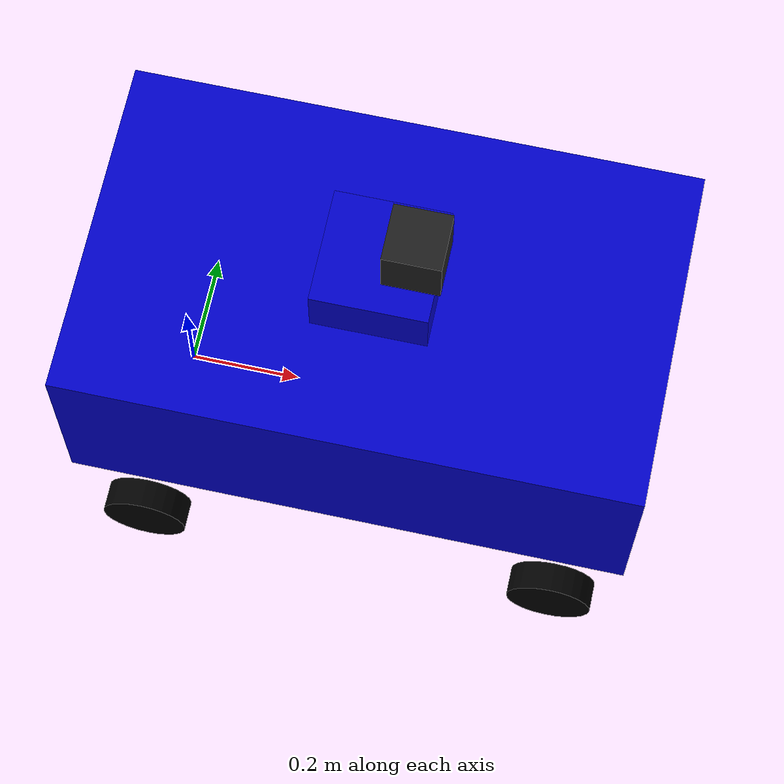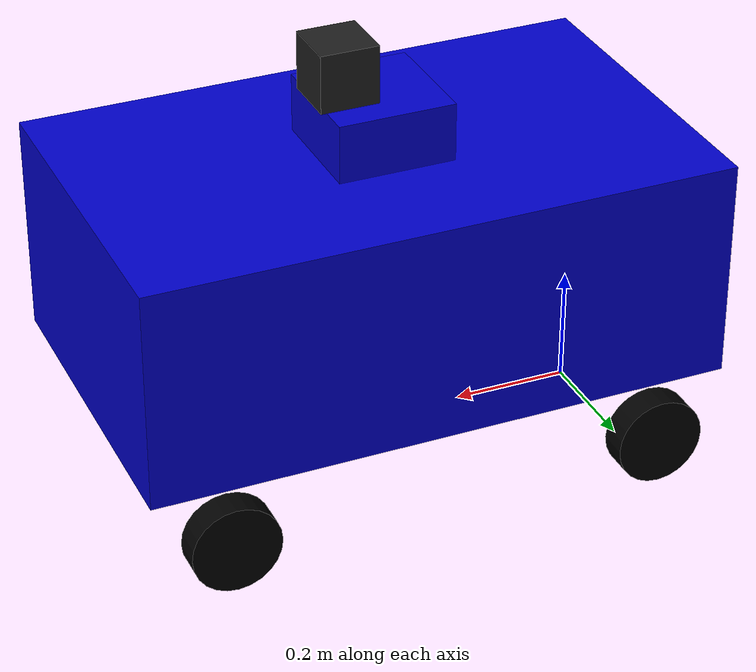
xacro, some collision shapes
<?xml version="1.0"?>
<robot name="R2D2_base" xmlns:xacro="http://ros.org/wiki/xacro">
<material name="blue">
  <color rgba="0 0 0.8 1"/>
</material>

<material name="black">
  <color rgba="0 0 0 1"/>
</material>

<material name="white">
  <color rgba="1 1 1 1"/>
</material>

<xacro:property name="wheel_cylinder_length" value="0.05" />
<xacro:property name="wheel_separation" value="0.658" />
<xacro:property name="wheel_radius" value="0.075" />

<xacro:property name="car_body_length" value="1" />
<xacro:property name="car_body_width" value="0.6" />
<xacro:property name="car_body_height" value="0.38" />

<xacro:property name="load_length" value="0.2" />
<xacro:property name="load_width" value="0.2" />
<xacro:property name="load_height" value="0.2" />

<!-- the z dist from baselink to  basefoot in Z axis-->
<xacro:property name="base_link_to_basefootprint_z" value="${wheel_radius}" />

<!-- the dist from body center to base_link in x dir -->
<xacro:property name="bodycenter_to_base_link_x" value="0.36" />
<!-- the dist from body center to base_link in y dir -->
<xacro:property name="bodycenter_to_base_link_y" value="0" />
<!-- the dist from body center to base_link in z dir -->
<xacro:property name="bodycenter_to_base_link_z" value="${wheel_radius+car_body_height/2}" />

<!-- the dist from load center to base_link in x dir -->
<xacro:property name="load_to_base_link_x" value="0.36" />
<!-- the dist from load center to base_link in y dir -->
<xacro:property name="load_to_base_link_y" value="0" />
<!-- the dist from load center to base_link in z dir -->
<xacro:property name="load_to_base_link_z" value="${bodycenter_to_base_link_z+car_body_height/2}" />

<!-- the dist from drivingwheel center to base_link in x dir -->
<xacro:property name="rearwheelcenter_to_baselink_x" value="0" />
<!-- the dist from drivingwheel center to base_link in y dir -->
<xacro:property name="rearwheelcenter_to_baselink_y" value="${wheel_separation/2.0}" />
<!-- the dist from drivingwheel center to base_link in z dir -->
<xacro:property name="rearwheelcenter_to_baselink_z" value="0" />

<!-- the dist from driven wheel center to base_link in x dir -->
<xacro:property name="frontwheelcenter_to_baselink_x" value="0.74" />
<!-- the dist from driven wheel center to base_link in y dir -->
<xacro:property name="frontwheelcenter_to_baselink_y" value="${wheel_separation/2.0}" />
<!-- the dist from driven wheel center to base_link in z dir -->
<xacro:property name="frontwheelcenter_to_baselink_z" value="0" />

<!-- the dist from laser center to base_link in x dir -->
<xacro:property name="lasercenter_to_baselink_x" value="0.42" />
<!-- the dist from laser center to base_link in y dir -->
<xacro:property name="lasercenter_to_baselink_y" value="0" />
<!-- the dist from laser center to base_link in z dir -->
<xacro:property name="lasercenter_to_baselink_z" value="${load_to_base_link_z+load_height/2+0.05}" />

  <xacro:macro name="default_inertial" params="mass">
    <inertial>
      <mass value="${mass}" />
      <inertia ixx="1.0" ixy="0.0" ixz="0.0" iyy="1.0" iyz="0.0" izz="1.0" />
    </inertial>
  </xacro:macro>

<link name="base_footprint">
</link>

<link name="base_link">
    <visual>
      <geometry>
         <box size="${car_body_length} ${car_body_width} ${car_body_height}"/>
      </geometry>
     <origin xyz="${bodycenter_to_base_link_x} ${bodycenter_to_base_link_y} ${bodycenter_to_base_link_z}" rpy="0 0 0"/>
     <material name="blue"/>
    </visual>
    <collision>
      <geometry>
        <box size="${car_body_length} ${car_body_width} ${car_body_height}"/>
      </geometry>
     <origin xyz="${bodycenter_to_base_link_x} ${bodycenter_to_base_link_y} ${bodycenter_to_base_link_z}" rpy="0 0 0"/>
    </collision>
    <xacro:default_inertial mass="100"/>
  </link>

<link name="load">
    <visual>
      <geometry>
         <box size="${load_length} ${load_width} ${load_height}"/>
      </geometry>
     <origin xyz="0 0 0" rpy="0 0 0"/>
     <material name="blue"/>
    </visual>
    <collision>
      <geometry>
        <box size="${load_length} ${load_width} ${load_height}"/>
      </geometry>
     <origin xyz="0 0 0" rpy="0 0 0"/>
    </collision>
    <xacro:default_inertial mass="50"/>
  </link>

  <link name="left_front_wheel">
    <visual>
      <geometry>
        <cylinder length="${wheel_cylinder_length}" radius="${wheel_radius}"/>
      </geometry>
      <origin xyz="0 0 0" rpy="1.57 0 0"/>
      <material name="black"/>
    </visual>
    <collision>
      <geometry>
        <cylinder length="${wheel_cylinder_length}" radius="${wheel_radius}"/>
      </geometry>
      <origin xyz="0 0 0" rpy="1.57 0 0"/>
    </collision>
    <xacro:default_inertial mass="1"/>
  </link>

<link name="right_front_wheel">
    <visual>
      <geometry>
        <cylinder length="${wheel_cylinder_length}" radius="${wheel_radius}"/>
      </geometry>
      <origin xyz="0 0 0" rpy="1.57 0 0"/>
      <material name="black"/>
    </visual>
    <collision>
      <geometry>
        <cylinder length="${wheel_cylinder_length}" radius="${wheel_radius}"/>
      </geometry>
      <origin xyz="0 0 0" rpy="1.57 0 0"/>
    </collision>
    <xacro:default_inertial mass="1"/>
  </link>

<link name="left_rear_wheel">
    <visual>
      <geometry>
        <cylinder length="${wheel_cylinder_length}" radius="${wheel_radius}"/>
      </geometry>
      <origin xyz="0 0 0" rpy="1.57 0 0"/>
      <material name="black"/>
    </visual>
    <collision>
      <geometry>
        <cylinder length="${wheel_cylinder_length}" radius="${wheel_radius}"/>
      </geometry>
      <origin xyz="0 0 0" rpy="1.57 0 0"/>
    </collision>
    <xacro:default_inertial mass="0.01"/>
  </link>

<link name="right_rear_wheel">
    <visual>
      <geometry>
        <cylinder length="${wheel_cylinder_length}" radius="${wheel_radius}"/>
      </geometry>
      <origin xyz="0 0 0" rpy="1.57 0 0"/>
      <material name="black"/>
    </visual>
    <collision>
      <geometry>
        <cylinder length="${wheel_cylinder_length}" radius="${wheel_radius}"/>
      </geometry>
      <origin xyz="0 0 0" rpy="1.57 0 0"/>
    </collision>
    <xacro:default_inertial mass="0.01"/>
  </link>

  <!-- published int launch file -->
  <!-- if published in here the tf time will too fast than other link ,it will display error in rviz-->
  <joint name="base_footprint_to_base_link" type="fixed">
    <parent link="base_footprint"/>
    <child link="base_link"/>
    <origin xyz="0 0 ${base_link_to_basefootprint_z}" rpy="0 0 0"/>
    <axis xyz="0 1 0"/>
  </joint>

  <joint name="load_to_base_link" type="fixed">
    <parent link="base_link"/>
    <child link="load"/>
    <origin xyz="${load_to_base_link_x} ${load_to_base_link_y} ${load_to_base_link_z}" rpy="0 0 0"/>
    <axis xyz="0 1 0"/>
  </joint>

  <joint name="left_front_wheel_joint" type="continuous">
    <parent link="base_link"/>
    <child link="left_front_wheel"/>
    <origin xyz="${frontwheelcenter_to_baselink_x} ${frontwheelcenter_to_baselink_y} ${frontwheelcenter_to_baselink_z}" rpy="0 0 0"/>
    <axis xyz="0 1 0"/>
  </joint>

  <joint name="right_front_wheel_joint" type="continuous">
    <parent link="base_link"/>
    <child link="right_front_wheel"/>
    <origin xyz="${frontwheelcenter_to_baselink_x} ${-frontwheelcenter_to_baselink_y} ${frontwheelcenter_to_baselink_z}" rpy="0 0 0" />
    <axis xyz="0 1 0"/>
  </joint>

  <joint name="left_rear_wheel_joint" type="continuous">
    <parent link="base_link"/>
    <child link="left_rear_wheel"/>
    <origin xyz="${rearwheelcenter_to_baselink_x} ${rearwheelcenter_to_baselink_y} ${rearwheelcenter_to_baselink_z}" rpy="0 0 0" />
    <axis xyz="0 1 0"/>
  </joint>

  <joint name="right_rear_wheel_joint" type="continuous">
    <parent link="base_link"/>
    <child link="right_rear_wheel"/>
    <origin xyz="${rearwheelcenter_to_baselink_x} ${-rearwheelcenter_to_baselink_y} ${rearwheelcenter_to_baselink_z}"  rpy="0 0 0" />
    <axis xyz="0 1 0"/>
  </joint>

  <xacro:include filename="$(find robotnik_pp_planner)/urdf/hokuyolaser_base.xacro" />
  <xacro:hokuyolaser parent_link="base_link">
    <origin xyz="${lasercenter_to_baselink_x} ${lasercenter_to_baselink_y} ${lasercenter_to_baselink_z}" rpy="0 0 0" />
  </xacro:hokuyolaser>

<transmission name="left_rear_wheel_trans">
  <type>transmission_interface/SimpleTransmission</type>
  <actuator name="$left_rear_wheel_motor">
    <mechanicalReduction>20</mechanicalReduction>
  </actuator>
  <joint name="left_rear_wheel_joint">
   <hardwareInterface>VelocityJointInterface</hardwareInterface>
  </joint>
</transmission>

<transmission name="right_rear_wheel_trans">
  <type>transmission_interface/SimpleTransmission</type>
  <actuator name="$right_rear_wheel_motor">
    <mechanicalReduction>20</mechanicalReduction>
  </actuator>
  <joint name="right_rear_wheel_joint">
   <hardwareInterface>VelocityJointInterface</hardwareInterface>
  </joint>
</transmission>

<transmission name="left_front_wheel_trans">
  <type>transmission_interface/SimpleTransmission</type>
  <actuator name="$left_front_wheel_motor">
    <mechanicalReduction>1</mechanicalReduction>
  </actuator>
  <joint name="left_front_wheel_joint">
   <hardwareInterface>VelocityJointInterface</hardwareInterface>
  </joint>
</transmission>

<transmission name="right_front_wheel_trans">
  <type>transmission_interface/SimpleTransmission</type>
  <actuator name="$right_front_wheel_motor">
    <mechanicalReduction>1</mechanicalReduction>
  </actuator>
  <joint name="right_front_wheel_joint">
   <hardwareInterface>VelocityJointInterface</hardwareInterface>
  </joint>
</transmission>

 <gazebo>
  <plugin name="gazebo_ros_control" filename="libgazebo_ros_control.so">
  <robotNamespace>/</robotNamespace>
  </plugin>
</gazebo>

</robot>

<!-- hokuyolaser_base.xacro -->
<robot xmlns:xacro="http://www.ros.org/wiki/xacro" name="hokuyolaser">

  <xacro:property name="laser_x" value="0.1" />
  <xacro:property name="laser_y" value="0.1" />
  <xacro:property name="laser_z" value="0.1" />

  <xacro:macro name="hokuyolaser" params="parent_link *joint_origin" >
    <!-- Hokuyo Laser -->
    <link name="hokuyo_link">

      <collision>
        <origin xyz="0 0 0" rpy="0 0 0"/>
        <geometry>
          <box size="${laser_x} ${laser_y} ${laser_z}"/>
        </geometry>
      </collision>

      <visual>
        <origin xyz="0 0 0" rpy="0 0 0"/>
        <geometry>
          <mesh filename="package://rrbot_description/meshes/hokuyo.dae"/>
        </geometry>
      </visual>

      <inertial>
        <mass value="1e-5" />
        <origin xyz="0 0 0" rpy="0 0 0"/>
        <inertia ixx="1e-6" ixy="0" ixz="0" iyy="1e-6" iyz="0" izz="1e-6" />
      </inertial>
    </link>

  <!-- hokuyo -->
    <gazebo reference="hokuyo_link">
      <material>Gazebo/Black</material>
      <sensor type="gpu_ray" name="head_hokuyo_sensor">
	  <!--sensor type="ray" name="head_hokuyo_sensor"-->
        <pose>0 0 0 0 0 0</pose>
        <!--visualize the scan  ray line chq -->
        <visualize>true</visualize>
        <update_rate>30</update_rate>
        <ray>
          <scan>
            <horizontal>
              <samples>7200</samples>
              <resolution>0.1</resolution>
              <min_angle>-3.1415926</min_angle>
              <max_angle>3.1415926</max_angle>
            </horizontal>
          </scan>
          <range>
            <min>0.001</min>
            <max>50.0</max>
            <resolution>0.001</resolution>resewt
          </range>
          <noise>
            <type>gaussian</type>
            <mean>0.0</mean>
            <stddev>0.01</stddev>
          </noise>
        </ray>
        <plugin name="gazebo_ros_head_hokuyo_controller" filename="libgazebo_ros_gpu_laser.so">
		<!--plugin name="gazebo_ros_head_hokuyo_controller" filename="libgazebo_ros_laser.so"-->
          <!-- specify the publishing scan topic name  -->
          <topicName>scan</topicName>
          <frameName>hokuyo_link</frameName>
        </plugin>
      </sensor>
    </gazebo>

    <joint name="lase_joint" type="fixed">
      <parent link="${parent_link}" />
      <child link="hokuyo_link" />
      <axis xyz="0 1 0" />
      <!-- origin cord spcified  outsidely -->
      <xacro:insert_block name="joint_origin"/>
    </joint>

  </xacro:macro>

</robot>
